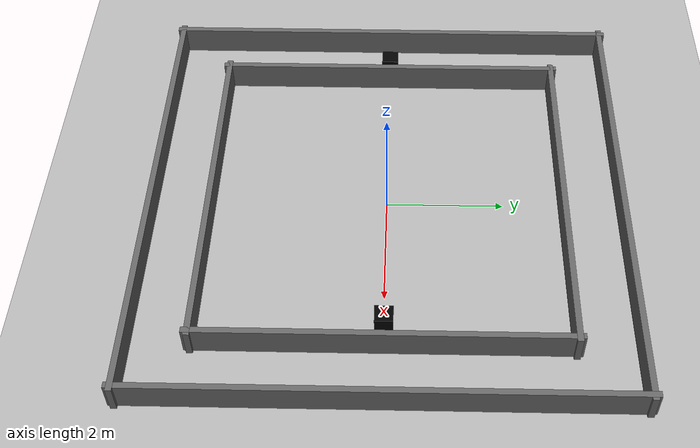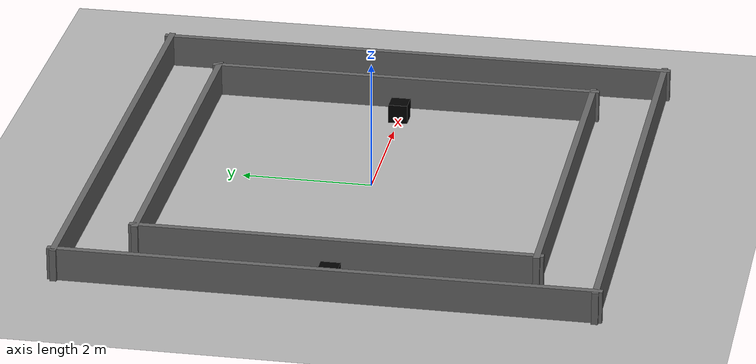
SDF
<?xml version="1.0" ?>
<sdf version="1.6">
  <world name="default">

    <!-- Inline ground plane instead of model://ground_plane -->
    <model name="ground_plane">
      <static>true</static>
      <link name="link">
        <collision name="collision">
          <geometry>
            <plane>
              <normal>0 0 1</normal>
              <size>100 100</size>
            </plane>
          </geometry>
        </collision>
        <visual name="visual">
          <geometry>
            <plane>
              <normal>0 0 1</normal>
              <size>100 100</size>
            </plane>
          </geometry>
          <material>
            <ambient>0.3 0.3 0.3 1</ambient>
            <diffuse>0.7 0.7 0.7 1</diffuse>
          </material>
        </visual>
      </link>
    </model>

    <!-- Simple directional sun compatible with Gazebo Harmonic -->
    <light type="directional" name="sun">
      <cast_shadows>true</cast_shadows>
      <direction>-0.5 0.5 -1</direction>
      <diffuse>1 1 1 1</diffuse>
      <specular>0.1 0.1 0.1 1</specular>
    </light>

    <!-- Corridor maze models (imported from corridor.world) -->
    <!-- ========== OUTER WALLS (8m x 8m) ========== -->

    <!-- Outer South Wall -->
    <model name="outer_south">
      <static>true</static>
      <pose>0 -4 0.25 0 0 0</pose>
      <link name="link">
        <collision name="collision">
          <geometry><box><size>8.2 0.1 0.5</size></box></geometry>
        </collision>
        <visual name="visual">
          <geometry><box><size>8.2 0.1 0.5</size></box></geometry>
          <material><ambient>0.3 0.3 0.3 1</ambient><diffuse>0.4 0.4 0.4 1</diffuse></material>
        </visual>
      </link>
    </model>

    <!-- Outer North Wall -->
    <model name="outer_north">
      <static>true</static>
      <pose>0 4 0.25 0 0 0</pose>
      <link name="link">
        <collision name="collision">
          <geometry><box><size>8.2 0.1 0.5</size></box></geometry>
        </collision>
        <visual name="visual">
          <geometry><box><size>8.2 0.1 0.5</size></box></geometry>
          <material><ambient>0.3 0.3 0.3 1</ambient><diffuse>0.4 0.4 0.4 1</diffuse></material>
        </visual>
      </link>
    </model>

    <!-- Outer West Wall -->
    <model name="outer_west">
      <static>true</static>
      <pose>-4 0 0.25 0 0 1.5708</pose>
      <link name="link">
        <collision name="collision">
          <geometry><box><size>8.2 0.1 0.5</size></box></geometry>
        </collision>
        <visual name="visual">
          <geometry><box><size>8.2 0.1 0.5</size></box></geometry>
          <material><ambient>0.3 0.3 0.3 1</ambient><diffuse>0.4 0.4 0.4 1</diffuse></material>
        </visual>
      </link>
    </model>

    <!-- Outer East Wall -->
    <model name="outer_east">
      <static>true</static>
      <pose>4 0 0.25 0 0 1.5708</pose>
      <link name="link">
        <collision name="collision">
          <geometry><box><size>8.2 0.1 0.5</size></box></geometry>
        </collision>
        <visual name="visual">
          <geometry><box><size>8.2 0.1 0.5</size></box></geometry>
          <material><ambient>0.3 0.3 0.3 1</ambient><diffuse>0.4 0.4 0.4 1</diffuse></material>
        </visual>
      </link>
    </model>

    <!-- ========== INNER WALLS (6m x 6m) ========== -->

    <!-- Inner South Wall -->
    <model name="inner_south">
      <static>true</static>
      <pose>0 -3 0.25 0 0 0</pose>
      <link name="link">
        <collision name="collision">
          <geometry><box><size>6.2 0.1 0.5</size></box></geometry>
        </collision>
        <visual name="visual">
          <geometry><box><size>6.2 0.1 0.5</size></box></geometry>
          <material><ambient>0.3 0.3 0.3 1</ambient><diffuse>0.4 0.4 0.4 1</diffuse></material>
        </visual>
      </link>
    </model>

    <!-- Inner North Wall -->
    <model name="inner_north">
      <static>true</static>
      <pose>0 3 0.25 0 0 0</pose>
      <link name="link">
        <collision name="collision">
          <geometry><box><size>6.2 0.1 0.5</size></box></geometry>
        </collision>
        <visual name="visual">
          <geometry><box><size>6.2 0.1 0.5</size></box></geometry>
          <material><ambient>0.3 0.3 0.3 1</ambient><diffuse>0.4 0.4 0.4 1</diffuse></material>
        </visual>
      </link>
    </model>

    <!-- Inner West Wall -->
    <model name="inner_west">
      <static>true</static>
      <pose>-3 0 0.25 0 0 1.5708</pose>
      <link name="link">
        <collision name="collision">
          <geometry><box><size>6.2 0.1 0.5</size></box></geometry>
        </collision>
        <visual name="visual">
          <geometry><box><size>6.2 0.1 0.5</size></box></geometry>
          <material><ambient>0.3 0.3 0.3 1</ambient><diffuse>0.4 0.4 0.4 1</diffuse></material>
        </visual>
      </link>
    </model>

    <!-- Inner East Wall -->
    <model name="inner_east">
      <static>true</static>
      <pose>3 0 0.25 0 0 1.5708</pose>
      <link name="link">
        <collision name="collision">
          <geometry><box><size>6.2 0.1 0.5</size></box></geometry>
        </collision>
        <visual name="visual">
          <geometry><box><size>6.2 0.1 0.5</size></box></geometry>
          <material><ambient>0.3 0.3 0.3 1</ambient><diffuse>0.4 0.4 0.4 1</diffuse></material>
        </visual>
      </link>
    </model>

    <!-- ========== OPTIONAL EXTRA OBSTACLES IN THE CORRIDOR ========== -->

    <!-- Static black cube obstacle 1 - South side of corridor -->
    <model name="obstacle_box_1">
      <static>true</static>
      <pose>-3.5 0.0 0.15 0 0 0</pose>
      <link name="link">
        <collision name="collision">
          <geometry><box><size>0.3 0.3 0.3</size></box></geometry>
        </collision>
        <visual name="visual">
          <geometry><box><size>0.3 0.3 0.3</size></box></geometry>
          <material>
            <ambient>0 0 0 1</ambient>
            <diffuse>0 0 0 1</diffuse>
          </material>
        </visual>
      </link>
    </model>

    <!-- Static black cube obstacle 2 - North side of corridor -->
    <model name="obstacle_box_2">
      <static>true</static>
      <pose>2.5 0.0 0.15 0 0 0</pose>
      <link name="link">
        <collision name="collision">
          <geometry><box><size>0.3 0.3 0.3</size></box></geometry>
        </collision>
        <visual name="visual">
          <geometry><box><size>0.3 0.3 0.3</size></box></geometry>
          <material>
            <ambient>0 0 0 1</ambient>
            <diffuse>0 0 0 1</diffuse>
          </material>
        </visual>
      </link>
    </model>

    <!-- Ignition Fortress (v6) plugins -->
    <plugin filename="libignition-gazebo-physics-system.so"
            name="ignition::gazebo::systems::Physics"/>
    <plugin filename="libignition-gazebo-user-commands-system.so"
            name="ignition::gazebo::systems::UserCommands"/>
    <plugin filename="libignition-gazebo-scene-broadcaster-system.so"
            name="ignition::gazebo::systems::SceneBroadcaster"/>
    <plugin filename="libignition-gazebo-imu-system.so"
            name="ignition::gazebo::systems::Imu"/>
    <plugin filename="libignition-gazebo-sensors-system.so"
            name="ignition::gazebo::systems::Sensors">
      <render_engine>ogre2</render_engine>
    </plugin>

  </world>
</sdf>
